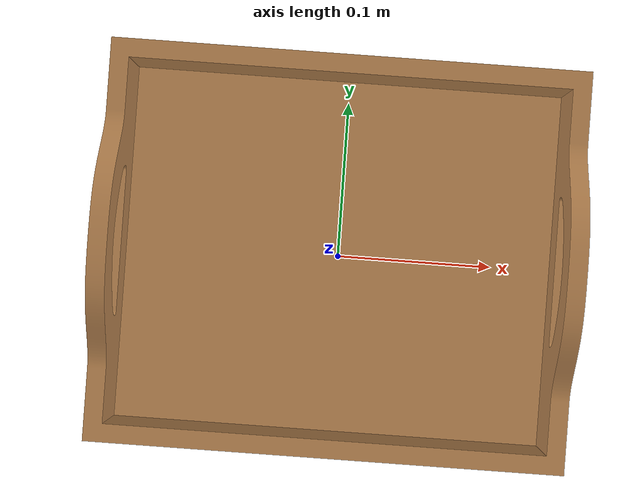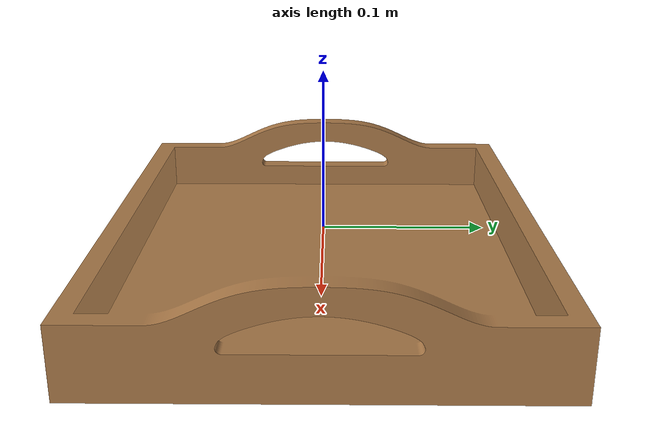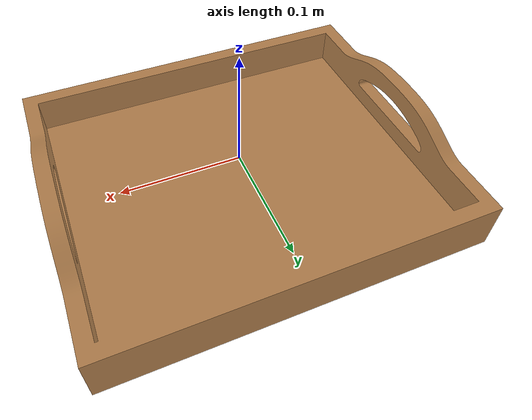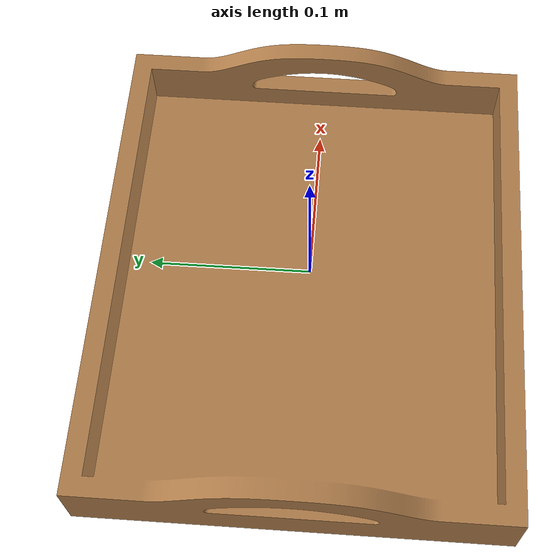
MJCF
<mujoco model="target">
  <compiler meshdir="assets" texturedir="assets" autolimits="true"/>
  <default>
    <default class="visual">
      <geom group="2" type="mesh" contype="0" conaffinity="0"/>
    </default>
    <default class="collision">
      <geom group="3" type="mesh"/>
    </default>
  </default>
  <asset>
    <texture type="2d" name="Woods &amp; Plastics.Finish Carpentry.Wood.Red Birch" file="Woods &amp; Plastics.Finish Carpentry.Wood.Red Birch.png"/>
    <material name="255,255,255" texture="Woods &amp; Plastics.Finish Carpentry.Wood.Red Birch" specular="1.0" shininess="1.0"/>
    <mesh file="object.obj"/>
  </asset>
  <worldbody>
    <body name="object">
      <geom material="255,255,255" mesh="object" class="visual"/>
      <geom mesh="object" class="collision"/>
    </body>
  </worldbody>
</mujoco>
